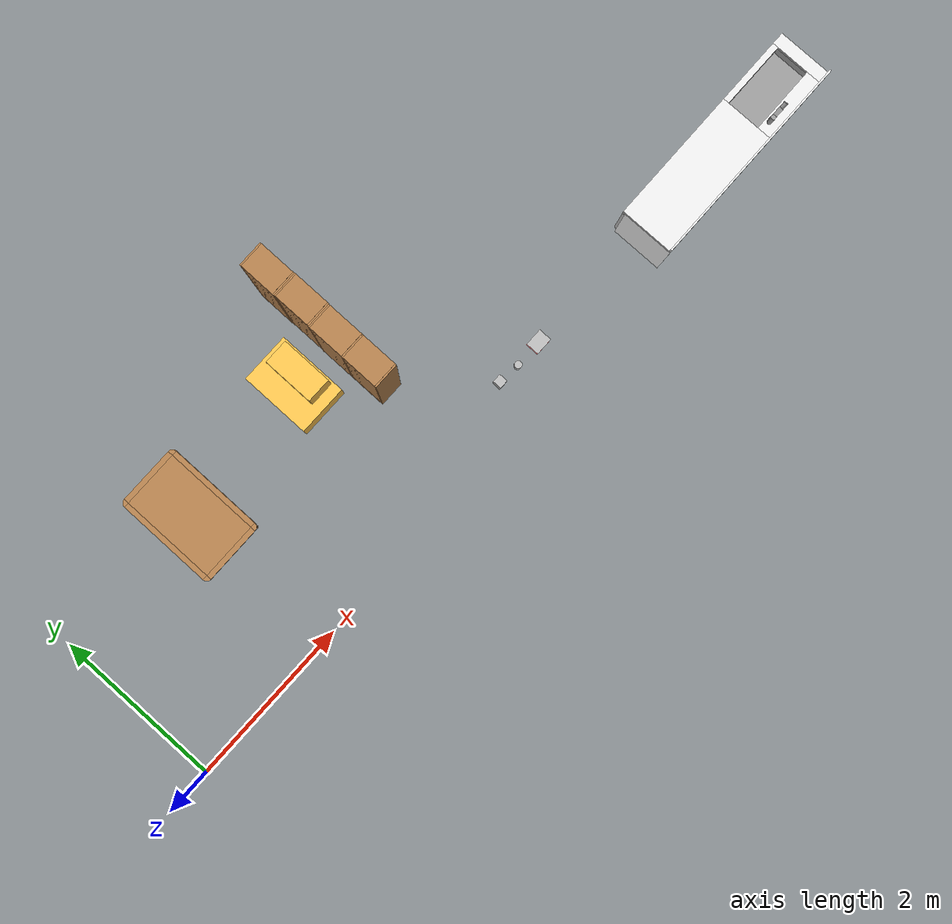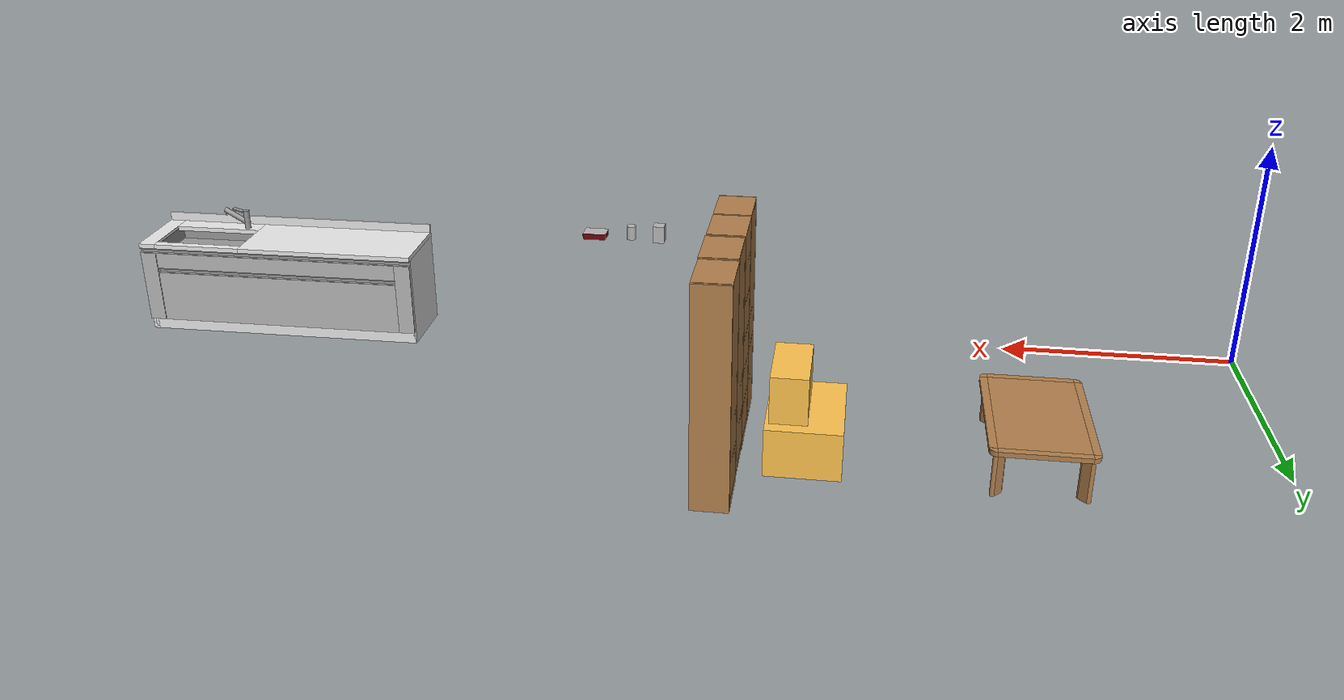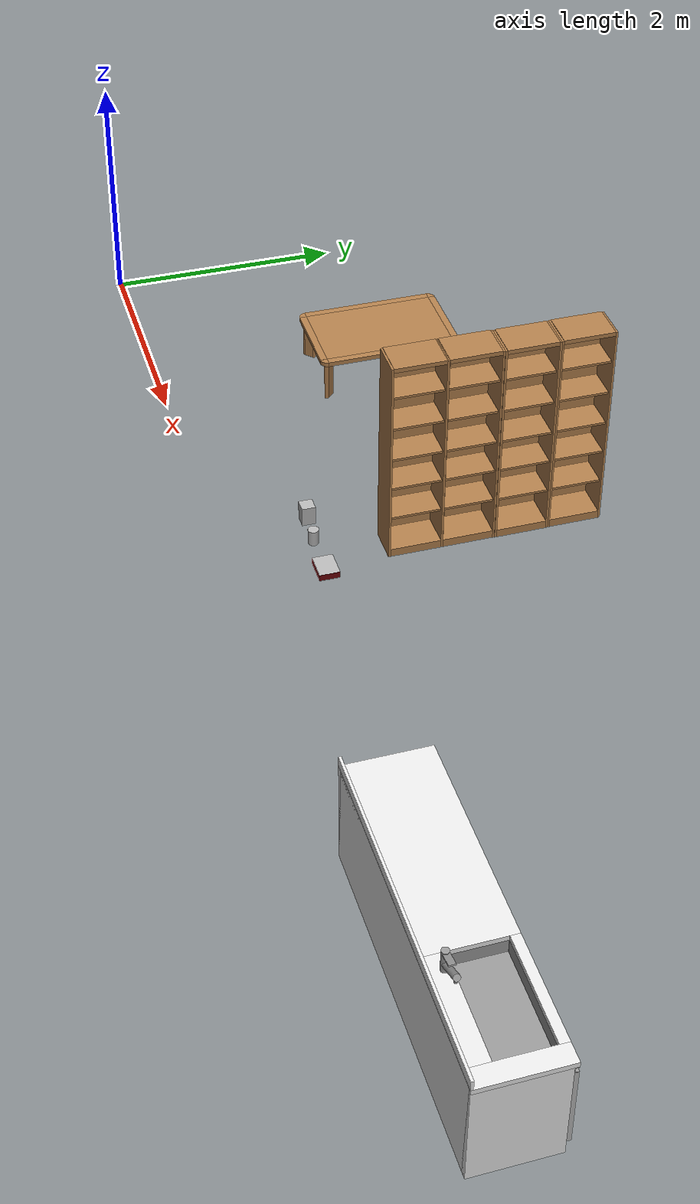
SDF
<sdf version="1.6">
 <world name="apartment">
  <model name="kitchen_lowtable">
   <link name="link">
    <inertial>
     <mass>10</mass>
     <inertia><ixx>1</ixx><ixy>0</ixy><ixz>0</ixz><iyy>1</iyy><iyz>0</iyz><izz>1</izz></inertia>
    </inertial>
    <visual name="center_board">
     <pose>0 0 0.38 0 -0 0</pose>
     <geometry><box><size>0.68 1.13 0.04</size></box></geometry>
     <material>
      <script><uri>model://base_materials/wood/scripts/wood.material</uri><name>base_materials/wood</name></script>
     </material>
    </visual>
    <collision name="collision_center_board">
     <pose>0 0 0.38 0 -0 0</pose>
     <geometry><box><size>0.68 1.13 0.04</size></box></geometry>
    </collision>
    <visual name="front_board">
     <pose>0.37 0 0.38 0 -0 0</pose>
     <geometry><box><size>0.06 1.13 0.04</size></box></geometry>
     <material>
      <script><uri>model://base_materials/wood/scripts/wood.material</uri><name>base_materials/wood</name></script>
     </material>
    </visual>
    <collision name="collision_front_board">
     <pose>0.37 0 0.38 0 -0 0</pose>
     <geometry><box><size>0.06 1.13 0.04</size></box></geometry>
    </collision>
    <visual name="back_board">
     <pose>-0.37 0 0.38 0 -0 0</pose>
     <geometry><box><size>0.06 1.13 0.04</size></box></geometry>
     <material>
      <script><uri>model://base_materials/wood/scripts/wood.material</uri><name>base_materials/wood</name></script>
     </material>
    </visual>
    <collision name="collision_back_board">
     <pose>-0.37 0 0.38 0 -0 0</pose>
     <geometry><box><size>0.06 1.13 0.04</size></box></geometry>
    </collision>
    <visual name="right_board">
     <pose>0 0.595 0.38 0 -0 0</pose>
     <geometry><box><size>0.68 0.06 0.04</size></box></geometry>
     <material>
      <script><uri>model://base_materials/wood/scripts/wood.material</uri><name>base_materials/wood</name></script>
     </material>
    </visual>
    <collision name="collision_right_board">
     <pose>0 0.595 0.38 0 -0 0</pose>
     <geometry><box><size>0.68 0.06 0.04</size></box></geometry>
    </collision>
    <visual name="left_board">
     <pose>0 -0.595 0.38 0 -0 0</pose>
     <geometry><box><size>0.68 0.06 0.04</size></box></geometry>
     <material>
      <script><uri>model://base_materials/wood/scripts/wood.material</uri><name>base_materials/wood</name></script>
     </material>
    </visual>
    <collision name="collision_left_board">
     <pose>0 -0.595 0.38 0 -0 0</pose>
     <geometry><box><size>0.68 0.06 0.04</size></box></geometry>
    </collision>
    <visual name="front_right_corner_board">
     <pose>0.34 0.565 0.38 0 -0 0</pose>
     <geometry><cylinder><radius>0.06</radius><length>0.039</length></cylinder></geometry>
     <material>
      <script><uri>model://base_materials/wood/scripts/wood.material</uri><name>base_materials/wood</name></script>
     </material>
    </visual>
    <collision name="collision_front_right_corner_board">
     <pose>0.34 0.565 0.38 0 -0 0</pose>
     <geometry><cylinder><radius>0.06</radius><length>0.039</length></cylinder></geometry>
    </collision>
    <visual name="front_left_corner_board">
     <pose>0.34 -0.565 0.38 0 -0 0</pose>
     <geometry><cylinder><radius>0.06</radius><length>0.039</length></cylinder></geometry>
     <material>
      <script><uri>model://base_materials/wood/scripts/wood.material</uri><name>base_materials/wood</name></script>
     </material>
    </visual>
    <collision name="collision_front_left_corner_board">
     <pose>0.34 -0.565 0.38 0 -0 0</pose>
     <geometry><cylinder><radius>0.06</radius><length>0.039</length></cylinder></geometry>
    </collision>
    <visual name="front_back_right_corner_board">
     <pose>-0.34 0.565 0.38 0 -0 0</pose>
     <geometry><cylinder><radius>0.06</radius><length>0.039</length></cylinder></geometry>
     <material>
      <script><uri>model://base_materials/wood/scripts/wood.material</uri><name>base_materials/wood</name></script>
     </material>
    </visual>
    <collision name="collision_back_right_corner_board">
     <pose>-0.34 0.565 0.38 0 -0 0</pose>
     <geometry><cylinder><radius>0.06</radius><length>0.039</length></cylinder></geometry>
    </collision>
    <visual name="front_back_left_corner_board">
     <pose>-0.34 -0.565 0.38 0 -0 0</pose>
     <geometry><cylinder><radius>0.06</radius><length>0.039</length></cylinder></geometry>
     <material>
      <script><uri>model://base_materials/wood/scripts/wood.material</uri><name>base_materials/wood</name></script>
     </material>
    </visual>
    <collision name="collision_back_left_corner_board">
     <pose>-0.34 -0.565 0.38 0 -0 0</pose>
     <geometry><cylinder><radius>0.06</radius><length>0.039</length></cylinder></geometry>
    </collision>
    <visual name="front_left_corner_frame1">
     <pose>0.345858 -0.57086 0.18 0 -0 0</pose>
     <geometry><cylinder><radius>0.02</radius><length>0.36</length></cylinder></geometry>
     <material>
      <script><uri>model://base_materials/wood/scripts/wood.material</uri><name>base_materials/wood</name></script>
     </material>
    </visual>
    <collision name="collision_front_left_corner_frame1">
     <pose>0.345858 -0.57086 0.18 0 -0 0</pose>
     <geometry><cylinder><radius>0.02</radius><length>0.36</length></cylinder></geometry>
    </collision>
    <visual name="front_left_corner_frame2">
     <pose>0.317574 -0.54257 0.18 0 -0 0.7854</pose>
     <geometry><box><size>0.04 0.08 0.36</size></box></geometry>
     <material>
      <script><uri>model://base_materials/wood/scripts/wood.material</uri><name>base_materials/wood</name></script>
     </material>
    </visual>
    <collision name="collision_front_left_corner_frame2">
     <pose>0.317574 -0.54257 0.18 0 -0 0.7854</pose>
     <geometry><box><size>0.04 0.08 0.36</size></box></geometry>
    </collision>
    <visual name="front_left_corner_frame3">
     <pose>0.289289 -0.51429 0.18 0 -0 0</pose>
     <geometry><cylinder><radius>0.02</radius><length>0.36</length></cylinder></geometry>
     <material>
      <script><uri>model://base_materials/wood/scripts/wood.material</uri><name>base_materials/wood</name></script>
     </material>
    </visual>
    <collision name="collision_front_left_corner_frame3">
     <pose>0.289289 -0.51429 0.18 0 -0 0</pose>
     <geometry><cylinder><radius>0.02</radius><length>0.36</length></cylinder></geometry>
    </collision>
    <visual name="front_right_corner_frame1">
     <pose>0.345858 0.57086 0.18 0 -0 0</pose>
     <geometry><cylinder><radius>0.02</radius><length>0.36</length></cylinder></geometry>
     <material>
      <script><uri>model://base_materials/wood/scripts/wood.material</uri><name>base_materials/wood</name></script>
     </material>
    </visual>
    <collision name="collision_front_right_corner_frame1">
     <pose>0.345858 0.57086 0.18 0 -0 0</pose>
     <geometry><cylinder><radius>0.02</radius><length>0.36</length></cylinder></geometry>
    </collision>
    <visual name="front_right_corner_frame2">
     <pose>0.317574 0.54257 0.18 0 0 -0.7854</pose>
     <geometry><box><size>0.04 0.08 0.36</size></box></geometry>
     <material>
      <script><uri>model://base_materials/wood/scripts/wood.material</uri><name>base_materials/wood</name></script>
     </material>
    </visual>
    <collision name="collision_front_right_corner_frame2">
     <pose>0.317574 0.54257 0.18 0 0 -0.7854</pose>
     <geometry><box><size>0.04 0.08 0.36</size></box></geometry>
    </collision>
    <visual name="front_right_corner_frame3">
     <pose>0.289289 0.51429 0.18 0 -0 0</pose>
     <geometry><cylinder><radius>0.02</radius><length>0.36</length></cylinder></geometry>
     <material>
      <script><uri>model://base_materials/wood/scripts/wood.material</uri><name>base_materials/wood</name></script>
     </material>
    </visual>
    <collision name="collision_front_right_corner_frame3">
     <pose>0.289289 0.51429 0.18 0 -0 0</pose>
     <geometry><cylinder><radius>0.02</radius><length>0.36</length></cylinder></geometry>
    </collision>
    <visual name="back_left_corner_frame1">
     <pose>-0.345858 -0.57086 0.18 0 -0 0</pose>
     <geometry><cylinder><radius>0.02</radius><length>0.36</length></cylinder></geometry>
     <material>
      <script><uri>model://base_materials/wood/scripts/wood.material</uri><name>base_materials/wood</name></script>
     </material>
    </visual>
    <collision name="collision_back_left_corner_frame1">
     <pose>-0.345858 -0.57086 0.18 0 -0 0</pose>
     <geometry><cylinder><radius>0.02</radius><length>0.36</length></cylinder></geometry>
    </collision>
    <visual name="back_left_corner_frame2">
     <pose>-0.317574 -0.54257 0.18 0 0 -0.7854</pose>
     <geometry><box><size>0.04 0.08 0.36</size></box></geometry>
     <material>
      <script><uri>model://base_materials/wood/scripts/wood.material</uri><name>base_materials/wood</name></script>
     </material>
    </visual>
    <collision name="collision_back_left_corner_frame2">
     <pose>-0.317574 -0.54257 0.18 0 0 -0.7854</pose>
     <geometry><box><size>0.04 0.08 0.36</size></box></geometry>
    </collision>
    <visual name="back_left_corner_frame3">
     <pose>-0.289289 -0.51429 0.18 0 -0 0</pose>
     <geometry><cylinder><radius>0.02</radius><length>0.36</length></cylinder></geometry>
     <material>
      <script><uri>model://base_materials/wood/scripts/wood.material</uri><name>base_materials/wood</name></script>
     </material>
    </visual>
    <collision name="collision_back_left_corner_frame3">
     <pose>-0.289289 -0.51429 0.18 0 -0 0</pose>
     <geometry><cylinder><radius>0.02</radius><length>0.36</length></cylinder></geometry>
    </collision>
    <visual name="back_right_corner_frame1">
     <pose>-0.345858 0.57086 0.18 0 -0 0</pose>
     <geometry><cylinder><radius>0.02</radius><length>0.36</length></cylinder></geometry>
     <material>
      <script><uri>model://base_materials/wood/scripts/wood.material</uri><name>base_materials/wood</name></script>
     </material>
    </visual>
    <collision name="collision_back_right_corner_frame1">
     <pose>-0.345858 0.57086 0.18 0 -0 0</pose>
     <geometry><cylinder><radius>0.02</radius><length>0.36</length></cylinder></geometry>
    </collision>
    <visual name="back_right_corner_frame2">
     <pose>-0.317574 0.54257 0.18 0 -0 0.7854</pose>
     <geometry><box><size>0.04 0.08 0.36</size></box></geometry>
     <material>
      <script><uri>model://base_materials/wood/scripts/wood.material</uri><name>base_materials/wood</name></script>
     </material>
    </visual>
    <collision name="collision_back_right_corner_frame2">
     <pose>-0.317574 0.54257 0.18 0 -0 0.7854</pose>
     <geometry><box><size>0.04 0.08 0.36</size></box></geometry>
    </collision>
    <visual name="back_right_corner_frame3">
     <pose>-0.289289 0.51429 0.18 0 -0 0</pose>
     <geometry><cylinder><radius>0.02</radius><length>0.36</length></cylinder></geometry>
     <material>
      <script><uri>model://base_materials/wood/scripts/wood.material</uri><name>base_materials/wood</name></script>
     </material>
    </visual>
    <collision name="collision_back_right_corner_frame3">
     <pose>-0.289289 0.51429 0.18 0 -0 0</pose>
     <geometry><cylinder><radius>0.02</radius><length>0.36</length></cylinder></geometry>
    </collision>
    <velocity_decay><linear>0</linear><angular>0</angular></velocity_decay>
   </link>
   <static>1</static>
   <pose>1.92002 1.94006 0 0 -0 4e-06</pose>
  </model>
  <model name="sink-fix">
   <link name="link">
    <inertial>
     <mass>10</mass>
     <inertia><ixx>1</ixx><ixy>0</ixy><ixz>0</ixz><iyy>1</iyy><iyz>0</iyz><izz>1</izz></inertia>
    </inertial>
    <visual name="faucet1">
     <pose>-0.52 0.82 0.94 0 -0 0</pose>
     <geometry><cylinder><radius>0.027</radius><length>0.18</length></cylinder></geometry>
     <material>
      <script><uri>model://base_materials/color/scripts</uri><name>hsr_color/grey</name></script>
     </material>
    </visual>
    <collision name="collision_faucet1">
     <pose>-0.52 0.82 0.94 0 -0 0</pose>
     <geometry><cylinder><radius>0.027</radius><length>0.18</length></cylinder></geometry>
    </collision>
    <visual name="faucet2">
     <pose>-0.52 0.72 0.97 1.047 -0 0</pose>
     <geometry><cylinder><radius>0.024</radius><length>0.24</length></cylinder></geometry>
     <material>
      <script><uri>model://base_materials/color/scripts</uri><name>hsr_color/grey</name></script>
     </material>
    </visual>
    <collision name="collision_faucet2">
     <pose>-0.52 0.72 0.97 1.047 -0 0</pose>
     <geometry><cylinder><radius>0.024</radius><length>0.24</length></cylinder></geometry>
    </collision>
    <visual name="faucet3">
     <pose>-0.52 0.63 1 0 -0 0</pose>
     <geometry><cylinder><radius>0.015</radius><length>0.04</length></cylinder></geometry>
     <material>
      <script><uri>model://base_materials/color/scripts</uri><name>hsr_color/grey</name></script>
     </material>
    </visual>
    <collision name="collision_faucet3">
     <pose>-0.52 0.63 1 0 -0 0</pose>
     <geometry><cylinder><radius>0.015</radius><length>0.04</length></cylinder></geometry>
    </collision>
    <visual name="faucet_handle">
     <pose>-0.52 0.75 1.03 1.309 -0 0</pose>
     <geometry><box><size>0.048 0.01 0.11</size></box></geometry>
     <material>
      <script><uri>model://base_materials/color/scripts</uri><name>hsr_color/grey</name></script>
     </material>
    </visual>
    <collision name="collision_faucet_handle">
     <pose>-0.52 0.75 1.03 1.309 -0 0</pose>
     <geometry><box><size>0.048 0.01 0.11</size></box></geometry>
    </collision>
    <visual name="back_bucket">
     <pose>-0.57 0.545 0.74 0 -0 0</pose>
     <geometry><box><size>0.02 0.8 0.18</size></box></geometry>
     <material>
      <script><uri>model://base_materials/color/scripts</uri><name>hsr_color/grey</name></script>
     </material>
    </visual>
    <collision name="collision_back_bucket">
     <pose>-0.57 0.545 0.74 0 -0 0</pose>
     <geometry><box><size>0.02 0.8 0.18</size></box></geometry>
    </collision>
    <visual name="front_bucket">
     <pose>-0.06 0.545 0.74 0 -0 0</pose>
     <geometry><box><size>0.02 0.8 0.18</size></box></geometry>
     <material>
      <script><uri>model://base_materials/color/scripts</uri><name>hsr_color/grey</name></script>
     </material>
    </visual>
    <collision name="collision_fromt_bucket">
     <pose>-0.06 0.545 0.74 0 -0 0</pose>
     <geometry><box><size>0.02 0.8 0.18</size></box></geometry>
    </collision>
    <visual name="left_bucket">
     <pose>-0.32 0.14 0.74 0 -0 0</pose>
     <geometry><box><size>0.5 0.02 0.18</size></box></geometry>
     <material>
      <script><uri>model://base_materials/color/scripts</uri><name>hsr_color/grey</name></script>
     </material>
    </visual>
    <collision name="collision_left_bucket">
     <pose>-0.32 0.14 0.74 0 -0 0</pose>
     <geometry><box><size>0.5 0.02 0.18</size></box></geometry>
    </collision>
    <visual name="right_bucket">
     <pose>-0.32 0.96 0.74 0 -0 0</pose>
     <geometry><box><size>0.5 0.02 0.18</size></box></geometry>
     <material>
      <script><uri>model://base_materials/color/scripts</uri><name>hsr_color/grey</name></script>
     </material>
    </visual>
    <collision name="collision_right_bucket">
     <pose>-0.32 0.96 0.74 0 -0 0</pose>
     <geometry><box><size>0.5 0.02 0.18</size></box></geometry>
    </collision>
    <visual name="bottom_bucket">
     <pose>-0.33 0.555 0.695 0 -0 0</pose>
     <geometry><box><size>0.52 0.82 0.02</size></box></geometry>
     <material>
      <script><uri>model://base_materials/color/scripts</uri><name>hsr_color/grey</name></script>
     </material>
    </visual>
    <collision name="collision_bottom_bucket">
     <pose>-0.33 0.555 0.695 0 -0 0</pose>
     <geometry><box><size>0.52 0.82 0.02</size></box></geometry>
    </collision>
    <visual name="front_board">
     <pose>-0.04 1.275 0.425 0 -0 0</pose>
     <geometry><box><size>0.02 2.549 0.85</size></box></geometry>
     <material>
      <script><uri>model://base_materials/color/scripts</uri><name>hsr_color/white</name></script>
     </material>
    </visual>
    <collision name="collision_front_board">
     <pose>-0.04 1.275 0.425 0 -0 0</pose>
     <geometry><box><size>0.02 2.549 0.85</size></box></geometry>
    </collision>
    <visual name="back_board1">
     <pose>-0.625 1.275 0.425 0 -0 0</pose>
     <geometry><box><size>0.05 2.549 0.85</size></box></geometry>
     <material>
      <script><uri>model://base_materials/color/scripts</uri><name>hsr_color/white</name></script>
     </material>
    </visual>
    <collision name="collision_back_board1">
     <pose>-0.625 1.275 0.425 0 -0 0</pose>
     <geometry><box><size>0.05 2.549 0.85</size></box></geometry>
    </collision>
    <visual name="left_board">
     <pose>-0.34 0.025 0.425 0 -0 0</pose>
     <geometry><box><size>0.62 0.05 0.85</size></box></geometry>
     <material>
      <script><uri>model://base_materials/color/scripts</uri><name>hsr_color/white</name></script>
     </material>
    </visual>
    <collision name="collision_left_board">
     <pose>-0.34 0.025 0.425 0 -0 0</pose>
     <geometry><box><size>0.62 0.05 0.85</size></box></geometry>
    </collision>
    <visual name="right_board">
     <pose>-0.34 2.525 0.425 0 -0 0</pose>
     <geometry><box><size>0.62 0.05 0.85</size></box></geometry>
     <material>
      <script><uri>model://base_materials/color/scripts</uri><name>hsr_color/white</name></script>
     </material>
    </visual>
    <collision name="collision_right_board">
     <pose>-0.34 2.525 0.425 0 -0 0</pose>
     <geometry><box><size>0.62 0.05 0.85</size></box></geometry>
    </collision>
    <visual name="top_left_board">
     <pose>-0.325 0.0725 0.835 0 -0 0</pose>
     <geometry><box><size>0.65 0.146 0.04</size></box></geometry>
     <material>
      <script><uri>model://base_materials/color/scripts</uri><name>hsr_color/white</name></script>
     </material>
    </visual>
    <collision name="collision_top_left_board">
     <pose>-0.325 0.0725 0.835 0 -0 0</pose>
     <geometry><box><size>0.65 0.146 0.04</size></box></geometry>
    </collision>
    <visual name="top_right_board">
     <pose>-0.325 1.7475 0.835 0 -0 0</pose>
     <geometry><box><size>0.65 1.606 0.04</size></box></geometry>
     <material>
      <script><uri>model://base_materials/color/scripts</uri><name>hsr_color/white</name></script>
     </material>
    </visual>
    <collision name="collision_top_right_board">
     <pose>-0.325 1.7475 0.835 0 -0 0</pose>
     <geometry><box><size>0.65 1.606 0.04</size></box></geometry>
    </collision>
    <visual name="top_front_board">
     <pose>-0.035 0.545 0.835 0 -0 0</pose>
     <geometry><box><size>0.07 0.8 0.04</size></box></geometry>
     <material>
      <script><uri>model://base_materials/color/scripts</uri><name>hsr_color/white</name></script>
     </material>
    </visual>
    <collision name="collision_top_front_board">
     <pose>-0.035 0.545 0.835 0 -0 0</pose>
     <geometry><box><size>0.07 0.8 0.04</size></box></geometry>
    </collision>
    <visual name="top_back_board">
     <pose>-0.56 0.545 0.835 0 -0 0</pose>
     <geometry><box><size>0.18 0.8 0.04</size></box></geometry>
     <material>
      <script><uri>model://base_materials/color/scripts</uri><name>hsr_color/white</name></script>
     </material>
    </visual>
    <collision name="collision_top_back_board">
     <pose>-0.56 0.545 0.835 0 -0 0</pose>
     <geometry><box><size>0.18 0.8 0.04</size></box></geometry>
    </collision>
    <visual name="back_board2">
     <pose>-0.64 1.275 0.895 0 -0 0</pose>
     <geometry><box><size>0.02 2.55 0.08</size></box></geometry>
     <material>
      <script><uri>model://base_materials/color/scripts</uri><name>hsr_color/white</name></script>
     </material>
    </visual>
    <collision name="collision_back_board2">
     <pose>-0.64 1.275 0.895 0 -0 0</pose>
     <geometry><box><size>0.02 2.55 0.08</size></box></geometry>
    </collision>
    <visual name="handle1_1">
     <pose>-0.015 1.275 0.81 0 -0 0</pose>
     <geometry><box><size>0.03 2.55 0.005</size></box></geometry>
     <material>
      <script><uri>model://base_materials/color/scripts</uri><name>hsr_color/grey</name></script>
     </material>
    </visual>
    <collision name="collision_handle1_1">
     <pose>-0.015 1.275 0.81 0 -0 0</pose>
     <geometry><box><size>0.03 2.55 0.005</size></box></geometry>
    </collision>
    <visual name="handle1_2">
     <pose>-0.029 1.275 0.7925 0 -0 0</pose>
     <geometry><box><size>0.005 2.55 0.04</size></box></geometry>
     <material>
      <script><uri>model://base_materials/color/scripts</uri><name>hsr_color/grey</name></script>
     </material>
    </visual>
    <collision name="collision_handle1_2">
     <pose>-0.029 1.275 0.7925 0 -0 0</pose>
     <geometry><box><size>0.005 2.55 0.04</size></box></geometry>
    </collision>
    <visual name="handle1_3">
     <pose>-0.015 1.275 0.77 0 -0 0</pose>
     <geometry><box><size>0.03 2.55 0.005</size></box></geometry>
     <material>
      <script><uri>model://base_materials/color/scripts</uri><name>hsr_color/grey</name></script>
     </material>
    </visual>
    <collision name="collision_handle1_3">
     <pose>-0.015 1.275 0.77 0 -0 0</pose>
     <geometry><box><size>0.03 2.55 0.005</size></box></geometry>
    </collision>
    <visual name="front_left_drawer">
     <pose>-0.015 0.0725 0.44 0 -0 0</pose>
     <geometry><box><size>0.03 0.145 0.66</size></box></geometry>
     <material>
      <script><uri>model://sink-fix/scripts</uri><uri>model://sink-fix/textures</uri><name>sink/001</name></script>
     </material>
    </visual>
    <collision name="collision_left_drawer">
     <pose>-0.015 0.0725 0.44 0 -0 0</pose>
     <geometry><box><size>0.03 0.145 0.66</size></box></geometry>
    </collision>
    <visual name="front_right_drawer">
     <pose>-0.015 2.4725 0.44 0 -0 0</pose>
     <geometry><box><size>0.03 0.145 0.66</size></box></geometry>
     <material>
      <script><uri>model://sink-fix/scripts</uri><uri>model://sink-fix/textures</uri><name>sink/001</name></script>
     </material>
    </visual>
    <collision name="collision_right_drawer">
     <pose>-0.015 2.4725 0.44 0 -0 0</pose>
     <geometry><box><size>0.03 0.145 0.66</size></box></geometry>
    </collision>
    <visual name="front_top_drawer">
     <pose>-0.015 1.275 0.6975 0 -0 0</pose>
     <geometry><box><size>0.03 2.25 0.145</size></box></geometry>
     <material>
      <script><uri>model://sink-fix/scripts</uri><uri>model://sink-fix/textures</uri><name>sink/001</name></script>
     </material>
    </visual>
    <collision name="collision_top_drawer">
     <pose>-0.015 1.275 0.6975 0 -0 0</pose>
     <geometry><box><size>0.03 2.25 0.145</size></box></geometry>
    </collision>
    <visual name="handle2_1">
     <pose>-0.015 1.275 0.62 0 -0 0</pose>
     <geometry><box><size>0.03 2.25 0.005</size></box></geometry>
     <material>
      <script><uri>model://base_materials/color/scripts</uri><name>hsr_color/grey</name></script>
     </material>
    </visual>
    <collision name="collision_handle2_1">
     <pose>-0.015 1.275 0.62 0 -0 0</pose>
     <geometry><box><size>0.03 2.25 0.005</size></box></geometry>
    </collision>
    <visual name="handle2_2">
     <pose>-0.029 1.275 0.6025 0 -0 0</pose>
     <geometry><box><size>0.005 2.25 0.04</size></box></geometry>
     <material>
      <script><uri>model://base_materials/color/scripts</uri><name>hsr_color/grey</name></script>
     </material>
    </visual>
    <collision name="collision_handle2_2">
     <pose>-0.029 1.275 0.6025 0 -0 0</pose>
     <geometry><box><size>0.005 2.25 0.04</size></box></geometry>
    </collision>
    <visual name="handle2_3">
     <pose>-0.015 1.275 0.58 0 -0 0</pose>
     <geometry><box><size>0.03 2.25 0.005</size></box></geometry>
     <material>
      <script><uri>model://base_materials/color/scripts</uri><name>hsr_color/grey</name></script>
     </material>
    </visual>
    <collision name="collision_handle2_3">
     <pose>-0.015 1.275 0.58 0 -0 0</pose>
     <geometry><box><size>0.03 2.25 0.005</size></box></geometry>
    </collision>
    <visual name="front_bottom_drawer">
     <pose>-0.015 1.275 0.345 0 -0 0</pose>
     <geometry><box><size>0.03 2.25 0.47</size></box></geometry>
     <material>
      <script><uri>model://sink-fix/scripts</uri><uri>model://sink-fix/textures</uri><name>sink/001</name></script>
     </material>
    </visual>
    <collision name="collision_bottom_drawer">
     <pose>-0.015 1.275 0.345 0 -0 0</pose>
     <geometry><box><size>0.03 2.25 0.47</size></box></geometry>
    </collision>
    <velocity_decay><linear>0</linear><angular>0</angular></velocity_decay>
   </link>
   <static>1</static>
   <pose>9.8468 0.698245 0 0 -0 1.57904</pose>
  </model>
  <model name="Box_33x15">
   <link name="Wall">
    <pose>0 0 0.1985 0 -0 0</pose>
    <inertial>
     <mass>5</mass>
     <inertia><ixx>0.2157</ixx><iyy>0.3597</iyy><izz>0.444</izz><ixy>0</ixy><ixz>0</ixz><iyz>0</iyz></inertia>
    </inertial>
    <collision name="Wall_Collision"><geometry><box><size>0.84 0.6 0.397</size></box></geometry></collision>
    <visual name="Wall_Visual">
     <geometry><box><size>0.84 0.6 0.397</size></box></geometry>
     <material>
      <script><uri>file://media/materials/scripts/gazebo.material</uri><name>Gazebo/Grey</name></script>
      <ambient>1 0.764706 0.305882 1</ambient>
     </material>
    </visual>
   </link>
   <static>1</static>
   <pose>3.6736 2.06542 0 0 0 -1.5708</pose>
  </model>
  <model name="Box_24x15M">
   <link name="Wall">
    <pose>0 0 0.1985 0 -0 0</pose>
    <inertial>
     <mass>5</mass>
     <inertia><ixx>0.1022</ixx><iyy>0.2197</iyy><izz>0.1905</izz><ixy>0</ixy><ixz>0</ixz><iyz>0</iyz></inertia>
    </inertial>
    <collision name="Wall_Collision"><geometry><box><size>0.608 0.296 0.397</size></box></geometry></collision>
    <visual name="Wall_Visual">
     <geometry><box><size>0.608 0.296 0.397</size></box></geometry>
     <material>
      <script><uri>file://media/materials/scripts/gazebo.material</uri><name>Gazebo/Grey</name></script>
      <ambient>1 0.764706 0.305882 1</ambient>
     </material>
    </visual>
   </link>
   <static>1</static>
   <pose>3.79524 2.07405 0.389279 0 -0 1.5708</pose>
  </model>
  <model name="high_shelf03_clone">
   <link name="link">
    <inertial>
     <mass>5</mass>
     <inertia><ixx>1</ixx><ixy>0</ixy><ixz>0</ixz><iyy>1</iyy><iyz>0</iyz><izz>1</izz></inertia>
    </inertial>
    <visual name="left_board">
     <pose>-0.1475 0.009 0.898 0 -0 0</pose>
     <geometry><box><size>0.295 0.018 1.796</size></box></geometry>
     <material>
      <script>
       <uri>model://base_materials/wood/scripts</uri>
       <uri>model://base_materials/wood/textures</uri>
       <name>base_materials/light_wood</name>
      </script>
     </material>
    </visual>
    <collision name="collision_left_board">
     <pose>-0.1475 0.009 0.898 0 -0 0</pose>
     <geometry><box><size>0.295 0.018 1.796</size></box></geometry>
    </collision>
    <visual name="right_board">
     <pose>-0.1475 0.441 0.898 0 -0 0</pose>
     <geometry><box><size>0.295 0.018 1.796</size></box></geometry>
     <material>
      <script>
       <uri>model://base_materials/wood/scripts</uri>
       <uri>model://base_materials/wood/textures</uri>
       <name>base_materials/light_wood</name>
      </script>
     </material>
    </visual>
    <collision name="collision_right_board">
     <pose>-0.1475 0.441 0.898 0 -0 0</pose>
     <geometry><box><size>0.295 0.018 1.796</size></box></geometry>
    </collision>
    <visual name="top_board">
     <pose>-0.1475 0.225 1.7825 0 -0 0</pose>
     <geometry><box><size>0.295 0.414 0.035</size></box></geometry>
     <material>
      <script>
       <uri>model://base_materials/wood/scripts</uri>
       <uri>model://base_materials/wood/textures</uri>
       <name>base_materials/light_wood</name>
      </script>
     </material>
    </visual>
    <collision name="collision_top_board">
     <pose>-0.1475 0.225 1.7825 0 -0 0</pose>
     <geometry><box><size>0.295 0.414 0.035</size></box></geometry>
    </collision>
    <visual name="1st_shelf">
     <pose>-0.162 0.225 1.51 0 -0 0</pose>
     <geometry><box><size>0.266 0.414 0.018</size></box></geometry>
     <material>
      <script>
       <uri>model://base_materials/wood/scripts</uri>
       <uri>model://base_materials/wood/textures</uri>
       <name>base_materials/light_wood</name>
      </script>
     </material>
    </visual>
    <collision name="collision_1st_shelf">
     <pose>-0.162 0.225 1.51 0 -0 0</pose>
     <geometry><box><size>0.266 0.414 0.018</size></box></geometry>
    </collision>
    <visual name="2nd_shelf">
     <pose>-0.162 0.225 1.22 0 -0 0</pose>
     <geometry><box><size>0.266 0.414 0.018</size></box></geometry>
     <material>
      <script>
       <uri>model://base_materials/wood/scripts</uri>
       <uri>model://base_materials/wood/textures</uri>
       <name>base_materials/light_wood</name>
      </script>
     </material>
    </visual>
    <collision name="collision_2nd_shelf">
     <pose>-0.162 0.225 1.22 0 -0 0</pose>
     <geometry><box><size>0.266 0.414 0.018</size></box></geometry>
    </collision>
    <visual name="3rd_shelf">
     <pose>-0.162 0.225 0.93 0 -0 0</pose>
     <geometry><box><size>0.266 0.414 0.018</size></box></geometry>
     <material>
      <script>
       <uri>model://base_materials/wood/scripts</uri>
       <uri>model://base_materials/wood/textures</uri>
       <name>base_materials/light_wood</name>
      </script>
     </material>
    </visual>
    <collision name="collision_3rd_shelf">
     <pose>-0.162 0.225 0.93 0 -0 0</pose>
     <geometry><box><size>0.266 0.414 0.018</size></box></geometry>
    </collision>
    <visual name="4th_shelf">
     <pose>-0.162 0.225 0.65 0 -0 0</pose>
     <geometry><box><size>0.266 0.414 0.018</size></box></geometry>
     <material>
      <script>
       <uri>model://base_materials/wood/scripts</uri>
       <uri>model://base_materials/wood/textures</uri>
       <name>base_materials/light_wood</name>
      </script>
     </material>
    </visual>
    <collision name="collision_4th_shelf">
     <pose>-0.162 0.225 0.65 0 -0 0</pose>
     <geometry><box><size>0.266 0.414 0.018</size></box></geometry>
    </collision>
    <visual name="5th_shelf">
     <pose>-0.162 0.225 0.36 0 -0 0</pose>
     <geometry><box><size>0.266 0.414 0.018</size></box></geometry>
     <material>
      <script>
       <uri>model://base_materials/wood/scripts</uri>
       <uri>model://base_materials/wood/textures</uri>
       <name>base_materials/light_wood</name>
      </script>
     </material>
    </visual>
    <collision name="collision_5th_shelf">
     <pose>-0.162 0.225 0.36 0 -0 0</pose>
     <geometry><box><size>0.266 0.414 0.018</size></box></geometry>
    </collision>
    <visual name="bottom_board">
     <pose>-0.1475 0.225 0.035 0 -0 0</pose>
     <geometry><box><size>0.295 0.414 0.07</size></box></geometry>
     <material>
      <script>
       <uri>model://base_materials/wood/scripts</uri>
       <uri>model://base_materials/wood/textures</uri>
       <name>base_materials/light_wood</name>
      </script>
     </material>
    </visual>
    <collision name="collision_bottom_board">
     <pose>-0.1475 0.225 0.035 0 -0 0</pose>
     <geometry><box><size>0.295 0.414 0.07</size></box></geometry>
    </collision>
    <visual name="back_board">
     <pose>-0.286 0.225 0.898 0 -0 0</pose>
     <geometry><box><size>0.018 0.414 1.796</size></box></geometry>
     <material>
      <script>
       <uri>model://base_materials/wood/scripts</uri>
       <uri>model://base_materials/wood/textures</uri>
       <name>base_materials/light_wood</name>
      </script>
     </material>
    </visual>
    <collision name="collision_back_board">
     <pose>-0.286 0.225 0.898 0 -0 0</pose>
     <geometry><box><size>0.018 0.414 1.796</size></box></geometry>
    </collision>
    <velocity_decay><linear>0</linear><angular>0</angular></velocity_decay>
   </link>
   <static>1</static>
   <pose>4.45938 2.58304 0 0 0 -4e-06</pose>
  </model>
  <model name="high_shelf03_clone_clone">
   <link name="link">
    <inertial>
     <mass>5</mass>
     <inertia><ixx>1</ixx><ixy>0</ixy><ixz>0</ixz><iyy>1</iyy><iyz>0</iyz><izz>1</izz></inertia>
    </inertial>
    <visual name="left_board">
     <pose>-0.1475 0.009 0.898 0 -0 0</pose>
     <geometry><box><size>0.295 0.018 1.796</size></box></geometry>
     <material>
      <script>
       <uri>model://base_materials/wood/scripts</uri>
       <uri>model://base_materials/wood/textures</uri>
       <name>base_materials/light_wood</name>
      </script>
     </material>
    </visual>
    <collision name="collision_left_board">
     <pose>-0.1475 0.009 0.898 0 -0 0</pose>
     <geometry><box><size>0.295 0.018 1.796</size></box></geometry>
    </collision>
    <visual name="right_board">
     <pose>-0.1475 0.441 0.898 0 -0 0</pose>
     <geometry><box><size>0.295 0.018 1.796</size></box></geometry>
     <material>
      <script>
       <uri>model://base_materials/wood/scripts</uri>
       <uri>model://base_materials/wood/textures</uri>
       <name>base_materials/light_wood</name>
      </script>
     </material>
    </visual>
    <collision name="collision_right_board">
     <pose>-0.1475 0.441 0.898 0 -0 0</pose>
     <geometry><box><size>0.295 0.018 1.796</size></box></geometry>
    </collision>
    <visual name="top_board">
     <pose>-0.1475 0.225 1.7825 0 -0 0</pose>
     <geometry><box><size>0.295 0.414 0.035</size></box></geometry>
     <material>
      <script>
       <uri>model://base_materials/wood/scripts</uri>
       <uri>model://base_materials/wood/textures</uri>
       <name>base_materials/light_wood</name>
      </script>
     </material>
    </visual>
    <collision name="collision_top_board">
     <pose>-0.1475 0.225 1.7825 0 -0 0</pose>
     <geometry><box><size>0.295 0.414 0.035</size></box></geometry>
    </collision>
    <visual name="1st_shelf">
     <pose>-0.162 0.225 1.51 0 -0 0</pose>
     <geometry><box><size>0.266 0.414 0.018</size></box></geometry>
     <material>
      <script>
       <uri>model://base_materials/wood/scripts</uri>
       <uri>model://base_materials/wood/textures</uri>
       <name>base_materials/light_wood</name>
      </script>
     </material>
    </visual>
    <collision name="collision_1st_shelf">
     <pose>-0.162 0.225 1.51 0 -0 0</pose>
     <geometry><box><size>0.266 0.414 0.018</size></box></geometry>
    </collision>
    <visual name="2nd_shelf">
     <pose>-0.162 0.225 1.22 0 -0 0</pose>
     <geometry><box><size>0.266 0.414 0.018</size></box></geometry>
     <material>
      <script>
       <uri>model://base_materials/wood/scripts</uri>
       <uri>model://base_materials/wood/textures</uri>
       <name>base_materials/light_wood</name>
      </script>
     </material>
    </visual>
    <collision name="collision_2nd_shelf">
     <pose>-0.162 0.225 1.22 0 -0 0</pose>
     <geometry><box><size>0.266 0.414 0.018</size></box></geometry>
    </collision>
    <visual name="3rd_shelf">
     <pose>-0.162 0.225 0.93 0 -0 0</pose>
     <geometry><box><size>0.266 0.414 0.018</size></box></geometry>
     <material>
      <script>
       <uri>model://base_materials/wood/scripts</uri>
       <uri>model://base_materials/wood/textures</uri>
       <name>base_materials/light_wood</name>
      </script>
     </material>
    </visual>
    <collision name="collision_3rd_shelf">
     <pose>-0.162 0.225 0.93 0 -0 0</pose>
     <geometry><box><size>0.266 0.414 0.018</size></box></geometry>
    </collision>
    <visual name="4th_shelf">
     <pose>-0.162 0.225 0.65 0 -0 0</pose>
     <geometry><box><size>0.266 0.414 0.018</size></box></geometry>
     <material>
      <script>
       <uri>model://base_materials/wood/scripts</uri>
       <uri>model://base_materials/wood/textures</uri>
       <name>base_materials/light_wood</name>
      </script>
     </material>
    </visual>
    <collision name="collision_4th_shelf">
     <pose>-0.162 0.225 0.65 0 -0 0</pose>
     <geometry><box><size>0.266 0.414 0.018</size></box></geometry>
    </collision>
    <visual name="5th_shelf">
     <pose>-0.162 0.225 0.36 0 -0 0</pose>
     <geometry><box><size>0.266 0.414 0.018</size></box></geometry>
     <material>
      <script>
       <uri>model://base_materials/wood/scripts</uri>
       <uri>model://base_materials/wood/textures</uri>
       <name>base_materials/light_wood</name>
      </script>
     </material>
    </visual>
    <collision name="collision_5th_shelf">
     <pose>-0.162 0.225 0.36 0 -0 0</pose>
     <geometry><box><size>0.266 0.414 0.018</size></box></geometry>
    </collision>
    <visual name="bottom_board">
     <pose>-0.1475 0.225 0.035 0 -0 0</pose>
     <geometry><box><size>0.295 0.414 0.07</size></box></geometry>
     <material>
      <script>
       <uri>model://base_materials/wood/scripts</uri>
       <uri>model://base_materials/wood/textures</uri>
       <name>base_materials/light_wood</name>
      </script>
     </material>
    </visual>
    <collision name="collision_bottom_board">
     <pose>-0.1475 0.225 0.035 0 -0 0</pose>
     <geometry><box><size>0.295 0.414 0.07</size></box></geometry>
    </collision>
    <visual name="back_board">
     <pose>-0.286 0.225 0.898 0 -0 0</pose>
     <geometry><box><size>0.018 0.414 1.796</size></box></geometry>
     <material>
      <script>
       <uri>model://base_materials/wood/scripts</uri>
       <uri>model://base_materials/wood/textures</uri>
       <name>base_materials/light_wood</name>
      </script>
     </material>
    </visual>
    <collision name="collision_back_board">
     <pose>-0.286 0.225 0.898 0 -0 0</pose>
     <geometry><box><size>0.018 0.414 1.796</size></box></geometry>
    </collision>
    <velocity_decay><linear>0</linear><angular>0</angular></velocity_decay>
   </link>
   <static>1</static>
   <pose>4.4602 1.25217 0 0 0 -4e-06</pose>
  </model>
  <model name="high_shelf03_clone_clone_clone">
   <link name="link">
    <inertial>
     <mass>5</mass>
     <inertia><ixx>1</ixx><ixy>0</ixy><ixz>0</ixz><iyy>1</iyy><iyz>0</iyz><izz>1</izz></inertia>
    </inertial>
    <visual name="left_board">
     <pose>-0.1475 0.009 0.898 0 -0 0</pose>
     <geometry><box><size>0.295 0.018 1.796</size></box></geometry>
     <material>
      <script>
       <uri>model://base_materials/wood/scripts</uri>
       <uri>model://base_materials/wood/textures</uri>
       <name>base_materials/light_wood</name>
      </script>
     </material>
    </visual>
    <collision name="collision_left_board">
     <pose>-0.1475 0.009 0.898 0 -0 0</pose>
     <geometry><box><size>0.295 0.018 1.796</size></box></geometry>
    </collision>
    <visual name="right_board">
     <pose>-0.1475 0.441 0.898 0 -0 0</pose>
     <geometry><box><size>0.295 0.018 1.796</size></box></geometry>
     <material>
      <script>
       <uri>model://base_materials/wood/scripts</uri>
       <uri>model://base_materials/wood/textures</uri>
       <name>base_materials/light_wood</name>
      </script>
     </material>
    </visual>
    <collision name="collision_right_board">
     <pose>-0.1475 0.441 0.898 0 -0 0</pose>
     <geometry><box><size>0.295 0.018 1.796</size></box></geometry>
    </collision>
    <visual name="top_board">
     <pose>-0.1475 0.225 1.7825 0 -0 0</pose>
     <geometry><box><size>0.295 0.414 0.035</size></box></geometry>
     <material>
      <script>
       <uri>model://base_materials/wood/scripts</uri>
       <uri>model://base_materials/wood/textures</uri>
       <name>base_materials/light_wood</name>
      </script>
     </material>
    </visual>
    <collision name="collision_top_board">
     <pose>-0.1475 0.225 1.7825 0 -0 0</pose>
     <geometry><box><size>0.295 0.414 0.035</size></box></geometry>
    </collision>
    <visual name="1st_shelf">
     <pose>-0.162 0.225 1.51 0 -0 0</pose>
     <geometry><box><size>0.266 0.414 0.018</size></box></geometry>
     <material>
      <script>
       <uri>model://base_materials/wood/scripts</uri>
       <uri>model://base_materials/wood/textures</uri>
       <name>base_materials/light_wood</name>
      </script>
     </material>
    </visual>
    <collision name="collision_1st_shelf">
     <pose>-0.162 0.225 1.51 0 -0 0</pose>
     <geometry><box><size>0.266 0.414 0.018</size></box></geometry>
    </collision>
    <visual name="2nd_shelf">
     <pose>-0.162 0.225 1.22 0 -0 0</pose>
     <geometry><box><size>0.266 0.414 0.018</size></box></geometry>
     <material>
      <script>
       <uri>model://base_materials/wood/scripts</uri>
       <uri>model://base_materials/wood/textures</uri>
       <name>base_materials/light_wood</name>
      </script>
     </material>
    </visual>
    <collision name="collision_2nd_shelf">
     <pose>-0.162 0.225 1.22 0 -0 0</pose>
     <geometry><box><size>0.266 0.414 0.018</size></box></geometry>
    </collision>
    <visual name="3rd_shelf">
     <pose>-0.162 0.225 0.93 0 -0 0</pose>
     <geometry><box><size>0.266 0.414 0.018</size></box></geometry>
     <material>
      <script>
       <uri>model://base_materials/wood/scripts</uri>
       <uri>model://base_materials/wood/textures</uri>
       <name>base_materials/light_wood</name>
      </script>
     </material>
    </visual>
    <collision name="collision_3rd_shelf">
     <pose>-0.162 0.225 0.93 0 -0 0</pose>
     <geometry><box><size>0.266 0.414 0.018</size></box></geometry>
    </collision>
    <visual name="4th_shelf">
     <pose>-0.162 0.225 0.65 0 -0 0</pose>
     <geometry><box><size>0.266 0.414 0.018</size></box></geometry>
     <material>
      <script>
       <uri>model://base_materials/wood/scripts</uri>
       <uri>model://base_materials/wood/textures</uri>
       <name>base_materials/light_wood</name>
      </script>
     </material>
    </visual>
    <collision name="collision_4th_shelf">
     <pose>-0.162 0.225 0.65 0 -0 0</pose>
     <geometry><box><size>0.266 0.414 0.018</size></box></geometry>
    </collision>
    <visual name="5th_shelf">
     <pose>-0.162 0.225 0.36 0 -0 0</pose>
     <geometry><box><size>0.266 0.414 0.018</size></box></geometry>
     <material>
      <script>
       <uri>model://base_materials/wood/scripts</uri>
       <uri>model://base_materials/wood/textures</uri>
       <name>base_materials/light_wood</name>
      </script>
     </material>
    </visual>
    <collision name="collision_5th_shelf">
     <pose>-0.162 0.225 0.36 0 -0 0</pose>
     <geometry><box><size>0.266 0.414 0.018</size></box></geometry>
    </collision>
    <visual name="bottom_board">
     <pose>-0.1475 0.225 0.035 0 -0 0</pose>
     <geometry><box><size>0.295 0.414 0.07</size></box></geometry>
     <material>
      <script>
       <uri>model://base_materials/wood/scripts</uri>
       <uri>model://base_materials/wood/textures</uri>
       <name>base_materials/light_wood</name>
      </script>
     </material>
    </visual>
    <collision name="collision_bottom_board">
     <pose>-0.1475 0.225 0.035 0 -0 0</pose>
     <geometry><box><size>0.295 0.414 0.07</size></box></geometry>
    </collision>
    <visual name="back_board">
     <pose>-0.286 0.225 0.898 0 -0 0</pose>
     <geometry><box><size>0.018 0.414 1.796</size></box></geometry>
     <material>
      <script>
       <uri>model://base_materials/wood/scripts</uri>
       <uri>model://base_materials/wood/textures</uri>
       <name>base_materials/light_wood</name>
      </script>
     </material>
    </visual>
    <collision name="collision_back_board">
     <pose>-0.286 0.225 0.898 0 -0 0</pose>
     <geometry><box><size>0.018 0.414 1.796</size></box></geometry>
    </collision>
    <velocity_decay><linear>0</linear><angular>0</angular></velocity_decay>
   </link>
   <static>1</static>
   <pose>4.46002 1.68559 0 0 0 -4e-06</pose>
  </model>
  <model name="high_shelf03_clone_clone_clone_clone">
   <link name="link">
    <inertial>
     <mass>5</mass>
     <inertia><ixx>1</ixx><ixy>0</ixy><ixz>0</ixz><iyy>1</iyy><iyz>0</iyz><izz>1</izz></inertia>
    </inertial>
    <visual name="left_board">
     <pose>-0.1475 0.009 0.898 0 -0 0</pose>
     <geometry><box><size>0.295 0.018 1.796</size></box></geometry>
     <material>
      <script>
       <uri>model://base_materials/wood/scripts</uri>
       <uri>model://base_materials/wood/textures</uri>
       <name>base_materials/light_wood</name>
      </script>
     </material>
    </visual>
    <collision name="collision_left_board">
     <pose>-0.1475 0.009 0.898 0 -0 0</pose>
     <geometry><box><size>0.295 0.018 1.796</size></box></geometry>
    </collision>
    <visual name="right_board">
     <pose>-0.1475 0.441 0.898 0 -0 0</pose>
     <geometry><box><size>0.295 0.018 1.796</size></box></geometry>
     <material>
      <script>
       <uri>model://base_materials/wood/scripts</uri>
       <uri>model://base_materials/wood/textures</uri>
       <name>base_materials/light_wood</name>
      </script>
     </material>
    </visual>
    <collision name="collision_right_board">
     <pose>-0.1475 0.441 0.898 0 -0 0</pose>
     <geometry><box><size>0.295 0.018 1.796</size></box></geometry>
    </collision>
    <visual name="top_board">
     <pose>-0.1475 0.225 1.7825 0 -0 0</pose>
     <geometry><box><size>0.295 0.414 0.035</size></box></geometry>
     <material>
      <script>
       <uri>model://base_materials/wood/scripts</uri>
       <uri>model://base_materials/wood/textures</uri>
       <name>base_materials/light_wood</name>
      </script>
     </material>
    </visual>
    <collision name="collision_top_board">
     <pose>-0.1475 0.225 1.7825 0 -0 0</pose>
     <geometry><box><size>0.295 0.414 0.035</size></box></geometry>
    </collision>
    <visual name="1st_shelf">
     <pose>-0.162 0.225 1.51 0 -0 0</pose>
     <geometry><box><size>0.266 0.414 0.018</size></box></geometry>
     <material>
      <script>
       <uri>model://base_materials/wood/scripts</uri>
       <uri>model://base_materials/wood/textures</uri>
       <name>base_materials/light_wood</name>
      </script>
     </material>
    </visual>
    <collision name="collision_1st_shelf">
     <pose>-0.162 0.225 1.51 0 -0 0</pose>
     <geometry><box><size>0.266 0.414 0.018</size></box></geometry>
    </collision>
    <visual name="2nd_shelf">
     <pose>-0.162 0.225 1.22 0 -0 0</pose>
     <geometry><box><size>0.266 0.414 0.018</size></box></geometry>
     <material>
      <script>
       <uri>model://base_materials/wood/scripts</uri>
       <uri>model://base_materials/wood/textures</uri>
       <name>base_materials/light_wood</name>
      </script>
     </material>
    </visual>
    <collision name="collision_2nd_shelf">
     <pose>-0.162 0.225 1.22 0 -0 0</pose>
     <geometry><box><size>0.266 0.414 0.018</size></box></geometry>
    </collision>
    <visual name="3rd_shelf">
     <pose>-0.162 0.225 0.93 0 -0 0</pose>
     <geometry><box><size>0.266 0.414 0.018</size></box></geometry>
     <material>
      <script>
       <uri>model://base_materials/wood/scripts</uri>
       <uri>model://base_materials/wood/textures</uri>
       <name>base_materials/light_wood</name>
      </script>
     </material>
    </visual>
    <collision name="collision_3rd_shelf">
     <pose>-0.162 0.225 0.93 0 -0 0</pose>
     <geometry><box><size>0.266 0.414 0.018</size></box></geometry>
    </collision>
    <visual name="4th_shelf">
     <pose>-0.162 0.225 0.65 0 -0 0</pose>
     <geometry><box><size>0.266 0.414 0.018</size></box></geometry>
     <material>
      <script>
       <uri>model://base_materials/wood/scripts</uri>
       <uri>model://base_materials/wood/textures</uri>
       <name>base_materials/light_wood</name>
      </script>
     </material>
    </visual>
    <collision name="collision_4th_shelf">
     <pose>-0.162 0.225 0.65 0 -0 0</pose>
     <geometry><box><size>0.266 0.414 0.018</size></box></geometry>
    </collision>
    <visual name="5th_shelf">
     <pose>-0.162 0.225 0.36 0 -0 0</pose>
     <geometry><box><size>0.266 0.414 0.018</size></box></geometry>
     <material>
      <script>
       <uri>model://base_materials/wood/scripts</uri>
       <uri>model://base_materials/wood/textures</uri>
       <name>base_materials/light_wood</name>
      </script>
     </material>
    </visual>
    <collision name="collision_5th_shelf">
     <pose>-0.162 0.225 0.36 0 -0 0</pose>
     <geometry><box><size>0.266 0.414 0.018</size></box></geometry>
    </collision>
    <visual name="bottom_board">
     <pose>-0.1475 0.225 0.035 0 -0 0</pose>
     <geometry><box><size>0.295 0.414 0.07</size></box></geometry>
     <material>
      <script>
       <uri>model://base_materials/wood/scripts</uri>
       <uri>model://base_materials/wood/textures</uri>
       <name>base_materials/light_wood</name>
      </script>
     </material>
    </visual>
    <collision name="collision_bottom_board">
     <pose>-0.1475 0.225 0.035 0 -0 0</pose>
     <geometry><box><size>0.295 0.414 0.07</size></box></geometry>
    </collision>
    <visual name="back_board">
     <pose>-0.286 0.225 0.898 0 -0 0</pose>
     <geometry><box><size>0.018 0.414 1.796</size></box></geometry>
     <material>
      <script>
       <uri>model://base_materials/wood/scripts</uri>
       <uri>model://base_materials/wood/textures</uri>
       <name>base_materials/light_wood</name>
      </script>
     </material>
    </visual>
    <collision name="collision_back_board">
     <pose>-0.286 0.225 0.898 0 -0 0</pose>
     <geometry><box><size>0.018 0.414 1.796</size></box></geometry>
    </collision>
    <velocity_decay><linear>0</linear><angular>0</angular></velocity_decay>
   </link>
   <static>1</static>
   <pose>4.46403 2.13462 0 0 0 -4e-06</pose>
  </model>
  <model name="biscuit_box">
   <link name="link">
    <pose>0 0 0.025 0 -0 0</pose>
    <visual name="visual">
     <geometry><box><size>0.2 0.15 0.05</size></box></geometry>
     <material>
      <ambient>0.423 0.019 0.035 1</ambient>
      <diffuse>0.423 0.019 0.035 1</diffuse>
      <specular>0.01 0.01 0.01 1</specular>
      <emissive>0 0 0 1</emissive>
     </material>
    </visual>
    <collision name="collision"><geometry><box><size>0.1 0.1 0.15</size></box></geometry></collision>
   </link>
   <link name="link_1">
    <pose>0 0 0.05 0 -0 0</pose>
    <visual name="visual">
     <geometry><box><size>0.2 0.15 0.001</size></box></geometry>
     <material>
      <script>
       <uri>model://biscuit_box/materials/scripts</uri>
       <uri>model://biscuit_box/materials/textures</uri>
       <name>biscuit_pat</name>
      </script>
     </material>
    </visual>
    <collision name="collision"><geometry><box><size>0.1 0.1 0.15</size></box></geometry></collision>
   </link>
   <static>1</static>
   <pose>5.64903 0.412864 1.05091 0 -0 0</pose>
  </model>
  <model name="coffee_box">
   <link name="link_0">
    <visual name="visual">
     <pose>0 0 0.06 0 -0 0</pose>
     <geometry><cylinder><radius>0.04</radius><length>0.12</length></cylinder></geometry>
     <material>
      <script>
       <uri>model://coffee_box/materials/scripts</uri>
       <uri>model://coffee_box/materials/textures</uri>
       <name>coffee_pat</name>
      </script>
     </material>
    </visual>
    <collision name="collision">
     <geometry><cylinder><radius>0.04</radius><length>0.12</length></cylinder></geometry>
    </collision>
   </link>
   <static>1</static>
   <pose>5.32782 0.409765 1.04886 0 -0 0</pose>
  </model>
  <model name="tea_box">
   <link name="link">
    <pose>0 0 0.075 0 -0 0</pose>
    <visual name="visual">
     <geometry><box><size>0.1 0.1 0.15</size></box></geometry>
     <material>
      <script>
       <uri>model://tea_box/materials/scripts</uri>
       <uri>model://tea_box/materials/textures</uri>
       <name>tea_pat</name>
      </script>
     </material>
    </visual>
    <collision name="collision"><geometry><box><size>0.1 0.1 0.15</size></box></geometry></collision>
   </link>
   <static>1</static>
   <pose>5.07739 0.431405 1.04765 0 -0 0</pose>
  </model>
 </world>
</sdf>
